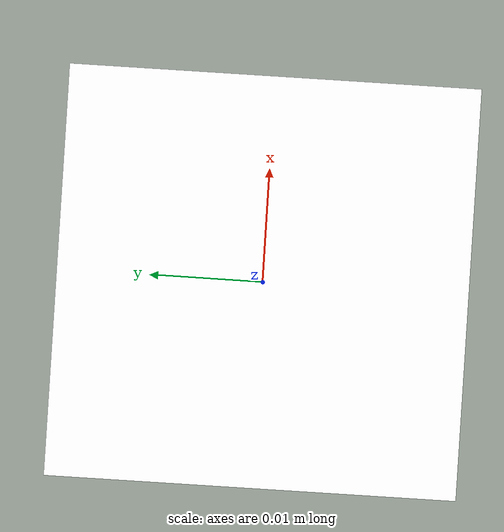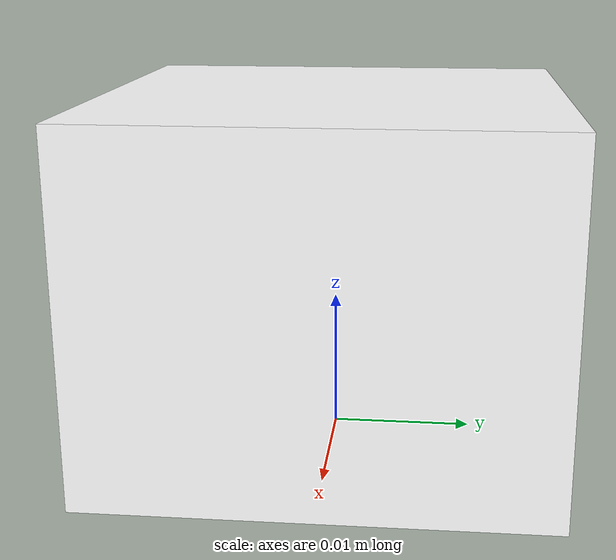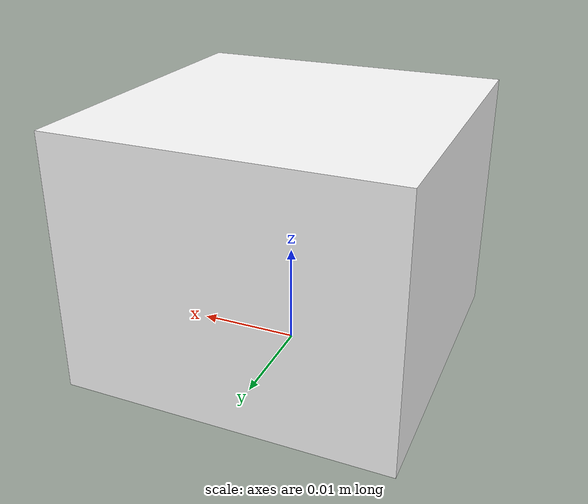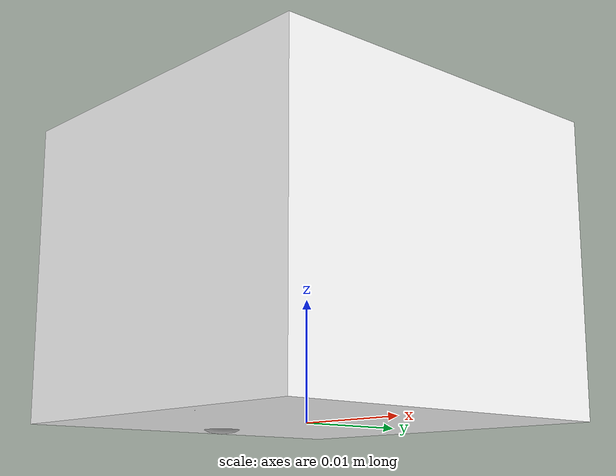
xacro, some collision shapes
<?xml version="1.0"?>
<robot name="toio" xmlns:xacro="http://ros.org/wiki/xacro">
  <xacro:arg name="robot_name" default="toio"/>

  <xacro:arg name="led_duration_ms" default="0"/>

  <!-- Intensity of the light of the lamp while it is lit. 0 leaves the lamp
       lighting up only itself, without casting color on the mat. -->
  <xacro:arg name="led_light_intensity" default="1.0"/>

  <xacro:arg name="frame_prefix" default=""/>

  <xacro:arg name="imu_interval_ms" default="100"/>
  <xacro:property name="imu_interval_ms" value="$(arg imu_interval_ms)"/>

  <!-- Inertial -->
  <xacro:macro name="inertial_box" params="mass height width depth">
    <mass value="${mass}"/>
    <inertia ixx="${(mass*(width*width+depth*depth))/12}" ixy="0" ixz="0"
      iyy="${(mass*(height*height+depth*depth))/12}" iyz="0"
      izz="${(mass*(height*height+width*width))/12}" />
  </xacro:macro>
  <xacro:macro name="inertial_cylinder" params="mass radius length">
    <mass value="${mass}"/>
    <inertia ixx="${((radius*radius)/4 + (length*length)/12)*mass}" ixy="0" ixz="0"
      iyy="${((radius*radius)/4 + (length*length)/12)*mass}" iyz="0"
      izz="${(mass*radius*radius)/2}" />
  </xacro:macro>
  <xacro:macro name="inertial_sphere" params="mass radius">
    <inertial>
      <mass value="${mass}" />
      <inertia ixx="${(2/5) * mass * radius * radius}" ixy="0.0" ixz="0.0"
               iyy="${(2/5) * mass * radius * radius}" iyz="0.0"
               izz="${(2/5) * mass * radius * radius}" />
    </inertial>
  </xacro:macro>

  <!-- center -->
  <link name="center">
    <visual>
      <origin xyz="0 0 0" rpy="3.14159 0 0"/>
      <geometry>
        <mesh filename="package://toio_description/meshes/toio/toiocorecube_v001.stl" scale="0.001 0.001 0.001"/>
      </geometry>
      <material name="body">
        <color rgba="1.0 1.0 1.0 1.0" />
      </material>
    </visual>
    <collision>
      <origin xyz="0 0 0.0125" rpy="0 0 0" />
      <geometry>
        <box size="0.0318 0.0318 0.025"/>
      </geometry>
    </collision>
    <inertial>
      <origin xyz="0 0 0.0125"/>
      <xacro:inertial_box mass="0.2" height="0.0256" width="0.0318" depth="0.0318"/>
    </inertial>
  </link>

  <joint name="led_joint" type="fixed">
    <parent link="center"/>
    <child link="led_link"/>
    <origin xyz="-0.0111 0 0.0033" rpy="0 0 0"/>
  </joint>
  <link name="led_link">
    <visual name="led">
      <geometry>
        <sphere radius="0.0037"/>
      </geometry>
      <material name="led_off">
        <color rgba="0.8 0.8 0.8 1.0"/>
      </material>
    </visual>
    <inertial>
      <mass value="1e-6"/>
      <inertia ixx="1e-9" ixy="0" ixz="0" iyy="1e-9" iyz="0" izz="1e-9"/>
    </inertial>
  </link>

  <gazebo reference="led_link">
    <light name="led_light" type="point">
      <pose>0 0 0.0007 0 0 0</pose>
      <diffuse>0 0 0 1</diffuse>
      <specular>0 0 0 1</specular>
      <attenuation>
        <range>0.03</range>
        <constant>0.4</constant>
        <linear>0.0</linear>
        <quadratic>1500.0</quadratic>
      </attenuation>
      <cast_shadows>false</cast_shadows>
      <intensity>0</intensity>
    </light>
  </gazebo>

  <joint name="base_footprint_joint" type="fixed">
    <parent link="center" />
    <child link="base_footprint" />
    <origin xyz="0.0038 0 0" rpy="0 0 0"/>
  </joint>

  <!-- base_footprint -->
  <link name="base_footprint" />
  <joint name="base_link_joint" type="fixed">
    <parent link="base_footprint" />
    <child link="base_link" />
    <origin xyz="0 0 0.00625" rpy="0 0 0"/>
  </joint>

  <!-- base_link -->
  <link name="base_link" />

  <!-- Wheel(right) -->
  <joint name="base_r_drive_wheel_joint"
        type="continuous">
    <parent link="base_link" />
    <child link="base_r_drive_wheel_link" />
    <origin xyz="0.0 -0.0133 0.0" rpy="-1.57 0 0" />
    <axis xyz="0 0 1" />
  </joint>
  <link name="base_r_drive_wheel_link">
    <inertial>
      <mass value="0.2" />
      <origin xyz="0 0 0" rpy="0 0 0" />
      <xacro:inertial_cylinder mass="0.2"
          radius="0.00625" length="0.002"/>
    </inertial>
    <visual>
      <origin xyz="0 0 0" rpy="0 0 0" />
      <geometry>
        <cylinder radius="0.00625" length="0.002" />
      </geometry>
      <material name="wheel">
        <color rgba="0.5 0.5 0.5 1.0" />
      </material>
    </visual>
    <collision>
      <origin xyz="0 0 0" rpy="0 0 0" />
      <geometry>
        <cylinder radius="0.00625" length="0.002" />
      </geometry>
    </collision>
  </link>

  <gazebo reference="base_r_drive_wheel_link">
    <mu1>1.0</mu1>
    <mu2>1.0</mu2>
    <kp>1e+5</kp>
    <kd>1.0</kd>
  </gazebo>

  <!-- Wheel(left) -->
  <joint name="base_l_drive_wheel_joint"
        type="continuous">
    <parent link="base_link" />
    <child link="base_l_drive_wheel_link" />
    <origin rpy="-1.57 0 0"
            xyz="0.0 0.0133 0.0" />
    <axis xyz="0 0 1" />
  </joint>
  <link name="base_l_drive_wheel_link">
    <inertial>
      <mass value="0.2" />
      <origin xyz="0 0 0" rpy="0 0 0" />
      <xacro:inertial_cylinder mass="0.2"
          radius="0.00625" length="0.002"/>
    </inertial>
    <visual>
      <origin xyz="0 0 0" rpy="0 0 0" />
      <geometry>
        <cylinder radius="0.00625" length="0.002" />
      </geometry>
      <material name="wheel">
        <color rgba="0.5 0.5 0.5 1.0" />
      </material>
    </visual>
    <collision>
      <origin xyz="0 0 0" rpy="0 0 0" />
      <geometry>
        <cylinder radius="0.00625" length="0.002" />
      </geometry>
    </collision>
  </link>

  <gazebo reference="base_l_drive_wheel_link">
    <mu1>1.0</mu1>
    <mu2>1.0</mu2>
    <kp>1e+5</kp>
    <kd>1.0</kd>
  </gazebo>

  <gazebo>
      <plugin
        filename="gz-sim-diff-drive-system"
        name="gz::sim::systems::DiffDrive">
        <left_joint>base_l_drive_wheel_joint</left_joint>
        <right_joint>base_r_drive_wheel_joint</right_joint>
        <wheel_separation>0.0266</wheel_separation>
        <wheel_radius>0.00625</wheel_radius>
        <max_linear_acceleration>0.5</max_linear_acceleration>
        <min_linear_acceleration>-0.5</min_linear_acceleration>
        <max_angular_acceleration>30.0</max_angular_acceleration>
        <min_angular_acceleration>-30.0</min_angular_acceleration>
        <max_linear_velocity>0.35</max_linear_velocity>
        <min_linear_velocity>-0.35</min_linear_velocity>
        <max_angular_velocity>26.17994</max_angular_velocity>
        <min_angular_velocity>-26.17994</min_angular_velocity>
        <topic>/model/$(arg robot_name)/cmd_vel</topic>
        <odom_topic>/model/$(arg robot_name)/odom</odom_topic>
        <tf_topic>tf_dummy</tf_topic>
        <frame_id>$(arg frame_prefix)odom</frame_id>
        <child_frame_id>$(arg frame_prefix)center</child_frame_id>
        <odom_publish_frequency>20</odom_publish_frequency>
      </plugin>

      <plugin
        filename="gz-sim-joint-state-publisher-system"
        name="gz::sim::systems::JointStatePublisher">
        <topic>/model/$(arg robot_name)/joint_states</topic>
        <update_rate>30</update_rate>
      </plugin>

      <plugin
        filename="gz-sim-pose-publisher-system"
        name="gz::sim::systems::PosePublisher">
        <publish_link_pose>false</publish_link_pose>
        <publish_model_pose>true</publish_model_pose>
        <publish_nested_model_pose>true</publish_nested_model_pose>
        <use_pose_vector_msg>true</use_pose_vector_msg>
        <publish_visual_pose>false</publish_visual_pose>
        <update_frequency>50</update_frequency>
      </plugin>

      <plugin
        filename="ToioLedSystem"
        name="toio_gazebo::ToioLedSystem">
        <topic>/model/$(arg robot_name)/led</topic>
        <led_visual>led</led_visual>
        <led_light>led_light</led_light>
        <led_light_intensity>$(arg led_light_intensity)</led_light_intensity>
        <led_duration_ms>$(arg led_duration_ms)</led_duration_ms>
      </plugin>
  </gazebo>

  <gazebo reference="center">
    <sensor name="imu" type="imu">
      <topic>/model/$(arg robot_name)/imu</topic>
      <gz_frame_id>$(arg frame_prefix)center</gz_frame_id>
      <update_rate>${1000.0 / imu_interval_ms}</update_rate>
      <always_on>1</always_on>
    </sensor>
  </gazebo>

  <joint name="rear_caster_joint" type="fixed">
    <parent link="base_footprint"/>
    <child link="rear_caster_link"/>
    <origin xyz="-0.0149 0 0.001" rpy="0 0 0" />
  </joint>
  <link name="rear_caster_link">
    <visual>
      <geometry>
        <sphere radius="0.001"/>
      </geometry>
      <material name="caster">
        <color rgba="1.0 1.0 1.0 1.0" />
      </material>
    </visual>
    <collision>
      <geometry>
        <sphere radius="0.001"/>
      </geometry>
    </collision>
    <xacro:inertial_sphere mass="0.01" radius="0.001"/>
  </link>

  <gazebo reference="rear_caster_joint">
    <preserveFixedJoint>true</preserveFixedJoint>
  </gazebo>
  <gazebo reference="rear_caster_link">
    <mu1>0.0</mu1>
    <mu2>0.0</mu2>
    <kp>1000000.0</kp>
    <kd>1.0</kd>
  </gazebo>

</robot>
